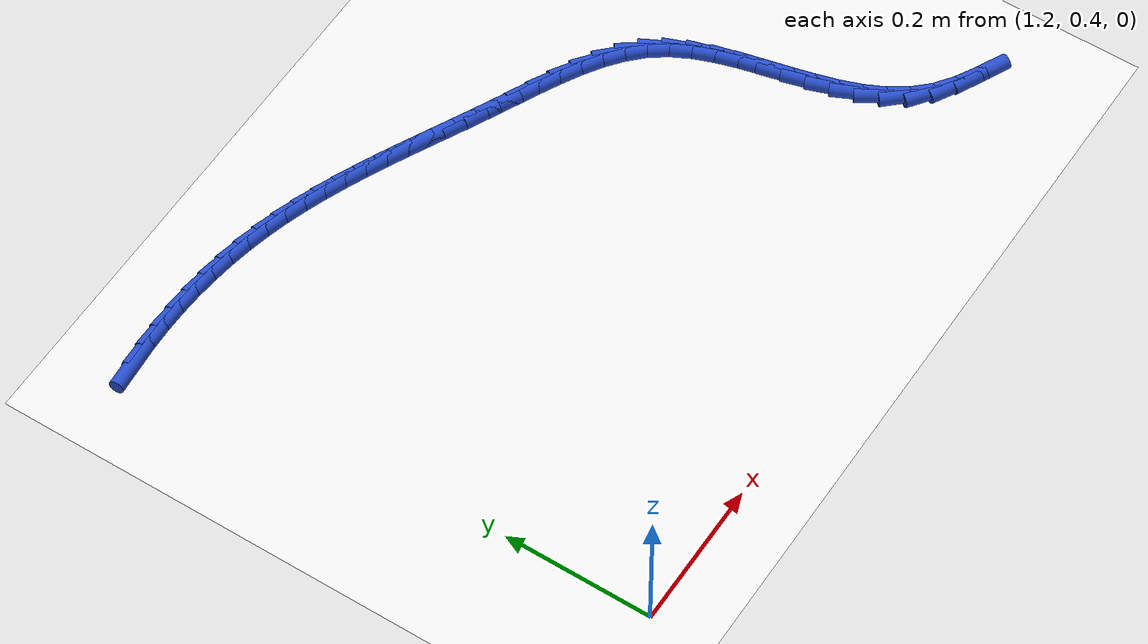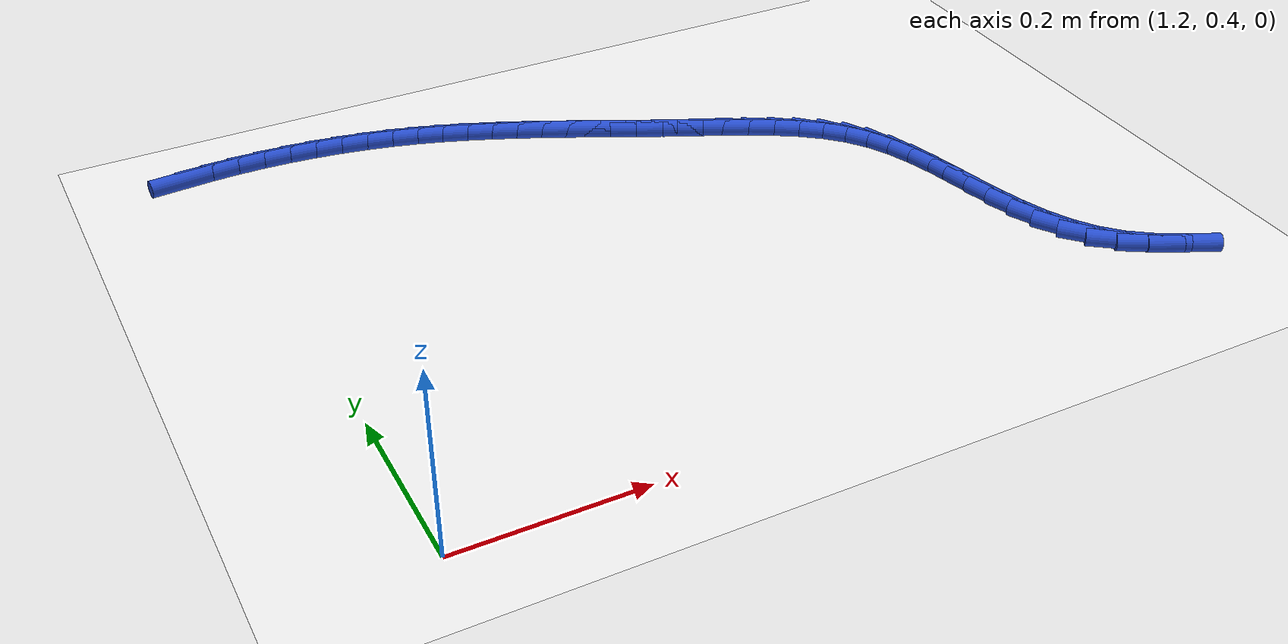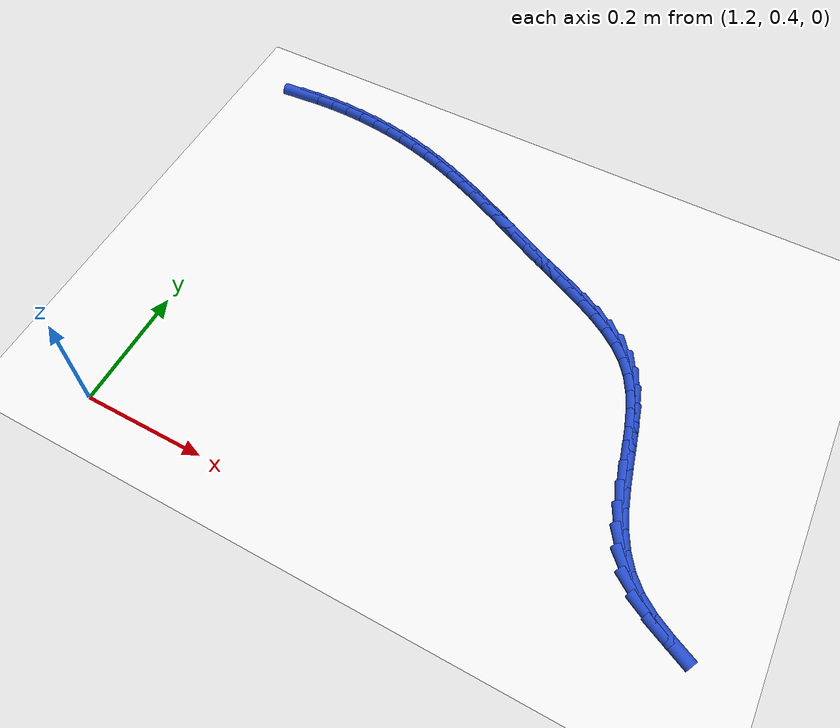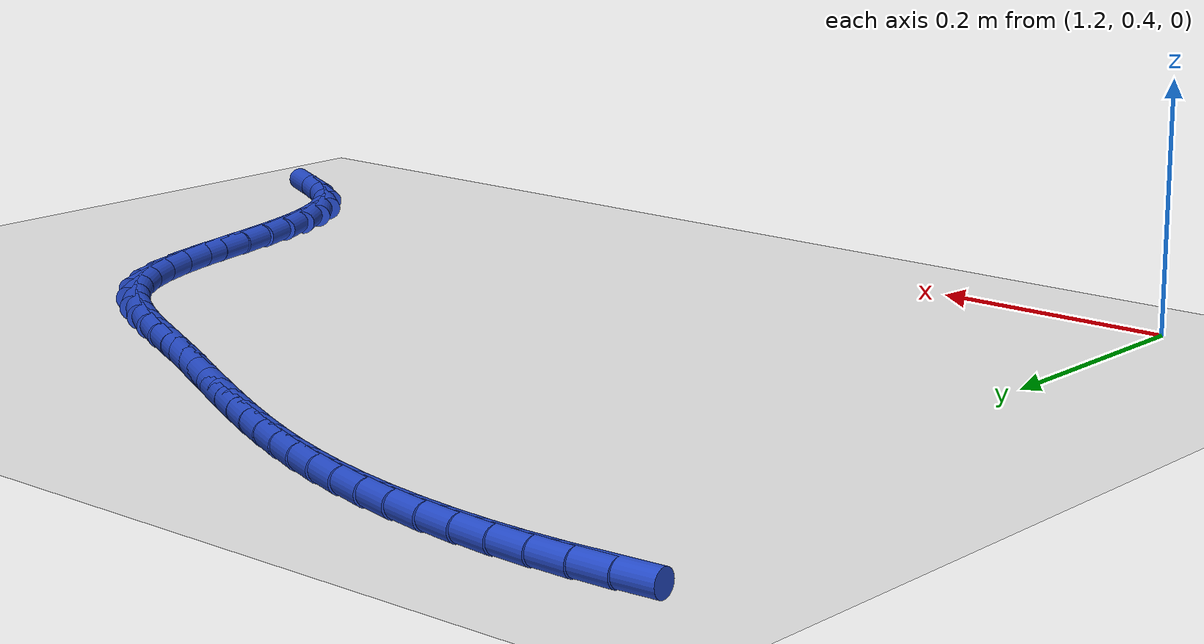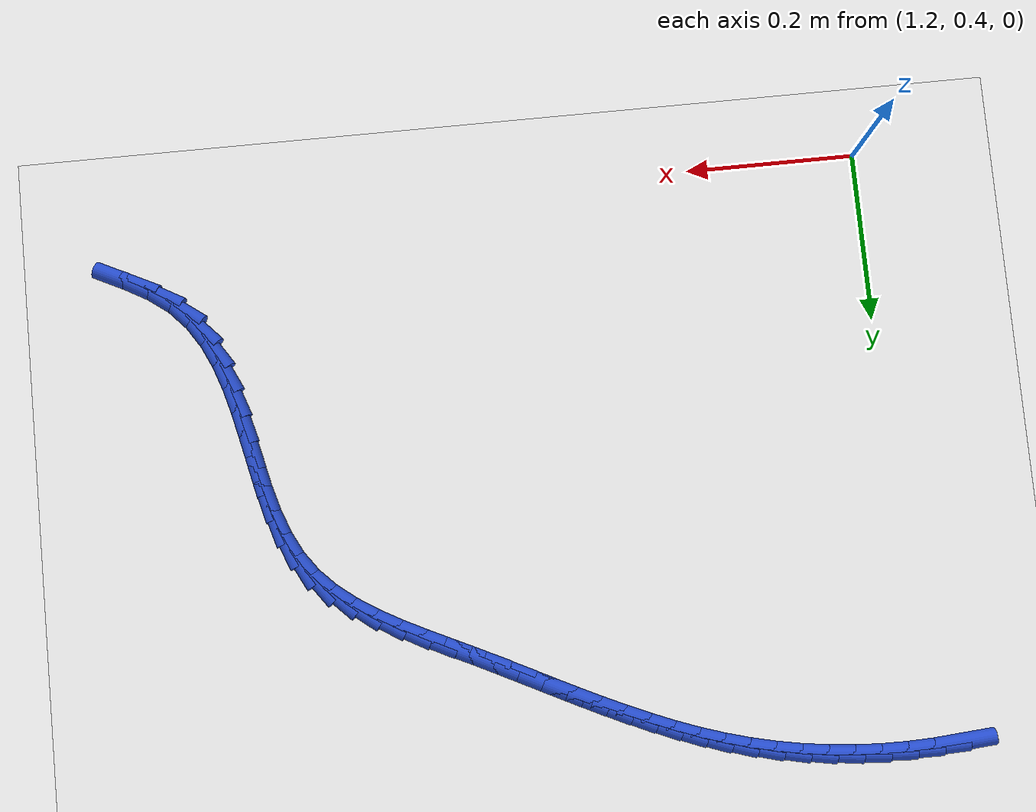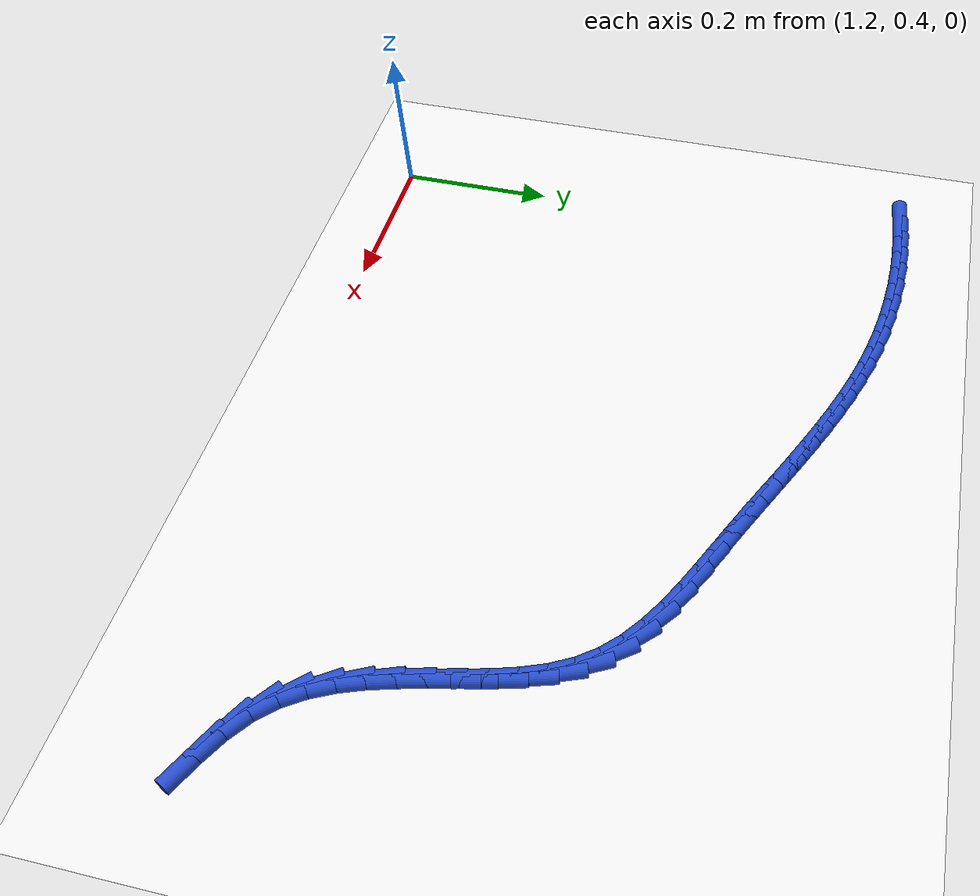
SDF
<sdf version="1.6">
 <world name="default">
  <model name="ground_plane">
   <static>1</static>
   <link name="link">
    <collision name="collision">
     <geometry><plane><normal>0 0 1</normal><size>100 100</size></plane></geometry>
     <surface><friction><ode><mu>100</mu><mu2>50</mu2></ode></friction></surface>
    </collision>
    <visual name="visual">
     <cast_shadows>0</cast_shadows>
     <geometry><plane><normal>0 0 1</normal><size>100 100</size></plane></geometry>
     <material>
      <script><uri>file://media/materials/scripts/gazebo.material</uri><name>Gazebo/WhiteGlow</name></script>
     </material>
    </visual>
   </link>
  </model>
  <model name="line">
   <link name="link_61">
    <pose>1.1579582937760833 1.1000345942703362 0.01 0 1.57 0.07704858479929733</pose>
    <collision name="collision">
     <geometry><cylinder><radius>0.01</radius><length>0.08</length></cylinder></geometry>
    </collision>
    <visual name="visual">
     <material>
      <script><name>Gazebo/Blue</name><uri>file://media/materials/scripts/gazebo.material</uri></script>
     </material>
     <geometry><cylinder><radius>0.01</radius><length>0.08</length></cylinder></geometry>
    </visual>
   </link>
   <link name="link_62">
    <pose>1.1885037407215007 1.1023927459542893 0.01 0 1.57 0.03299538136397213</pose>
    <collision name="collision">
     <geometry><cylinder><radius>0.01</radius><length>0.08</length></cylinder></geometry>
    </collision>
    <visual name="visual">
     <material>
      <script><name>Gazebo/Blue</name><uri>file://media/materials/scripts/gazebo.material</uri></script>
     </material>
     <geometry><cylinder><radius>0.01</radius><length>0.08</length></cylinder></geometry>
    </visual>
   </link>
   <link name="link_63">
    <pose>1.2191616110281127 1.1034046813332463 0.01 0 1.57 -0.01047388133471727</pose>
    <collision name="collision">
     <geometry><cylinder><radius>0.01</radius><length>0.08</length></cylinder></geometry>
    </collision>
    <visual name="visual">
     <material>
      <script><name>Gazebo/Blue</name><uri>file://media/materials/scripts/gazebo.material</uri></script>
     </material>
     <geometry><cylinder><radius>0.01</radius><length>0.08</length></cylinder></geometry>
    </visual>
   </link>
   <link name="link_64">
    <pose>1.249833512203072 1.103083415732097 0.01 0 1.57 -0.0536126245257303</pose>
    <collision name="collision">
     <geometry><cylinder><radius>0.01</radius><length>0.08</length></cylinder></geometry>
    </collision>
    <visual name="visual">
     <material>
      <script><name>Gazebo/Blue</name><uri>file://media/materials/scripts/gazebo.material</uri></script>
     </material>
     <geometry><cylinder><radius>0.01</radius><length>0.08</length></cylinder></geometry>
    </visual>
   </link>
   <link name="link_65">
    <pose>1.2804210517535308 1.1014419644757312 0.01 0 1.57 -0.09667654379611802</pose>
    <collision name="collision">
     <geometry><cylinder><radius>0.01</radius><length>0.08</length></cylinder></geometry>
    </collision>
    <visual name="visual">
     <material>
      <script><name>Gazebo/Blue</name><uri>file://media/materials/scripts/gazebo.material</uri></script>
     </material>
     <geometry><cylinder><radius>0.01</radius><length>0.08</length></cylinder></geometry>
    </visual>
   </link>
   <link name="link_66">
    <pose>1.3108258371866428 1.0984933428890373 0.01 0 1.57 -0.13992501433444052</pose>
    <collision name="collision">
     <geometry><cylinder><radius>0.01</radius><length>0.08</length></cylinder></geometry>
    </collision>
    <visual name="visual">
     <material>
      <script><name>Gazebo/Blue</name><uri>file://media/materials/scripts/gazebo.material</uri></script>
     </material>
     <geometry><cylinder><radius>0.01</radius><length>0.08</length></cylinder></geometry>
    </visual>
   </link>
   <link name="link_67">
    <pose>1.3409494760095602 1.0942505662969064 0.01 0 1.57 -0.18362271742699401</pose>
    <collision name="collision">
     <geometry><cylinder><radius>0.01</radius><length>0.08</length></cylinder></geometry>
    </collision>
    <visual name="visual">
     <material>
      <script><name>Gazebo/Blue</name><uri>file://media/materials/scripts/gazebo.material</uri></script>
     </material>
     <geometry><cylinder><radius>0.01</radius><length>0.08</length></cylinder></geometry>
    </visual>
   </link>
   <link name="link_68">
    <pose>1.3706935757294356 1.0887266500242272 0.01 0 1.57 -0.22804130920534815</pose>
    <collision name="collision">
     <geometry><cylinder><radius>0.01</radius><length>0.08</length></cylinder></geometry>
    </collision>
    <visual name="visual">
     <material>
      <script><name>Gazebo/Blue</name><uri>file://media/materials/scripts/gazebo.material</uri></script>
     </material>
     <geometry><cylinder><radius>0.01</radius><length>0.08</length></cylinder></geometry>
    </visual>
   </link>
   <link name="link_69">
    <pose>1.399959743853422 1.0819346093958897 0.01 0 1.57 -0.27314064011513567</pose>
    <collision name="collision">
     <geometry><cylinder><radius>0.01</radius><length>0.08</length></cylinder></geometry>
    </collision>
    <visual name="visual">
     <material>
      <script><name>Gazebo/Blue</name><uri>file://media/materials/scripts/gazebo.material</uri></script>
     </material>
     <geometry><cylinder><radius>0.01</radius><length>0.08</length></cylinder></geometry>
    </visual>
   </link>
   <link name="link_70">
    <pose>1.4286609782781352 1.0738941799688617 0.01 0 1.57 -0.31568889287929874</pose>
    <collision name="collision">
     <geometry><cylinder><radius>0.01</radius><length>0.08</length></cylinder></geometry>
    </collision>
    <visual name="visual">
     <material>
      <script><name>Gazebo/Blue</name><uri>file://media/materials/scripts/gazebo.material</uri></script>
     </material>
     <geometry><cylinder><radius>0.01</radius><length>0.08</length></cylinder></geometry>
    </visual>
   </link>
   <link name="link_71">
    <pose>1.456827944930706 1.064694520428787 0.01 0 1.57 -0.3533522785203286</pose>
    <collision name="collision">
     <geometry><cylinder><radius>0.01</radius><length>0.08</length></cylinder></geometry>
    </collision>
    <visual name="visual">
     <material>
      <script><name>Gazebo/Blue</name><uri>file://media/materials/scripts/gazebo.material</uri></script>
     </material>
     <geometry><cylinder><radius>0.01</radius><length>0.08</length></cylinder></geometry>
    </visual>
   </link>
   <link name="link_72">
    <pose>1.484560763086737 1.0544657663411499 0.01 0 1.57 -0.38575921719246875</pose>
    <collision name="collision">
     <geometry><cylinder><radius>0.01</radius><length>0.08</length></cylinder></geometry>
    </collision>
    <visual name="visual">
     <material>
      <script><name>Gazebo/Blue</name><uri>file://media/materials/scripts/gazebo.material</uri></script>
     </material>
     <geometry><cylinder><radius>0.01</radius><length>0.08</length></cylinder></geometry>
    </visual>
   </link>
   <link name="link_73">
    <pose>1.5119604510733182 1.0433385837041018 0.01 0 1.57 -0.4126924981171364</pose>
    <collision name="collision">
     <geometry><cylinder><radius>0.01</radius><length>0.08</length></cylinder></geometry>
    </collision>
    <visual name="visual">
     <material>
      <script><name>Gazebo/Blue</name><uri>file://media/materials/scripts/gazebo.material</uri></script>
     </material>
     <geometry><cylinder><radius>0.01</radius><length>0.08</length></cylinder></geometry>
    </visual>
   </link>
   <link name="link_74">
    <pose>1.5391280272175378 1.0314436385157928 0.01 0 1.57 -0.43404288449702344</pose>
    <collision name="collision">
     <geometry><cylinder><radius>0.01</radius><length>0.08</length></cylinder></geometry>
    </collision>
    <visual name="visual">
     <material>
      <script><name>Gazebo/Blue</name><uri>file://media/materials/scripts/gazebo.material</uri></script>
     </material>
     <geometry><cylinder><radius>0.01</radius><length>0.08</length></cylinder></geometry>
    </visual>
   </link>
   <link name="link_75">
    <pose>1.5661645098464838 1.0189115967743727 0.01 0 1.57 -0.4497865280194924</pose>
    <collision name="collision">
     <geometry><cylinder><radius>0.01</radius><length>0.08</length></cylinder></geometry>
    </collision>
    <visual name="visual">
     <material>
      <script><name>Gazebo/Blue</name><uri>file://media/materials/scripts/gazebo.material</uri></script>
     </material>
     <geometry><cylinder><radius>0.01</radius><length>0.08</length></cylinder></geometry>
    </visual>
   </link>
   <link name="link_76">
    <pose>1.5931709172872452 1.0058731244779926 0.01 0 1.57 -0.4599643226397401</pose>
    <collision name="collision">
     <geometry><cylinder><radius>0.01</radius><length>0.08</length></cylinder></geometry>
    </collision>
    <visual name="visual">
     <material>
      <script><name>Gazebo/Blue</name><uri>file://media/materials/scripts/gazebo.material</uri></script>
     </material>
     <geometry><cylinder><radius>0.01</radius><length>0.08</length></cylinder></geometry>
    </visual>
   </link>
   <link name="link_77">
    <pose>1.6202482678669108 0.9924588876248024 0.01 0 1.57 -0.46466522681983186</pose>
    <collision name="collision">
     <geometry><cylinder><radius>0.01</radius><length>0.08</length></cylinder></geometry>
    </collision>
    <visual name="visual">
     <material>
      <script><name>Gazebo/Blue</name><uri>file://media/materials/scripts/gazebo.material</uri></script>
     </material>
     <geometry><cylinder><radius>0.01</radius><length>0.08</length></cylinder></geometry>
    </visual>
   </link>
   <link name="link_78">
    <pose>1.6474975799125702 0.9787995522129526 0.01 0 1.57 -0.4640144312835244</pose>
    <collision name="collision">
     <geometry><cylinder><radius>0.01</radius><length>0.08</length></cylinder></geometry>
    </collision>
    <visual name="visual">
     <material>
      <script><name>Gazebo/Blue</name><uri>file://media/materials/scripts/gazebo.material</uri></script>
     </material>
     <geometry><cylinder><radius>0.01</radius><length>0.08</length></cylinder></geometry>
    </visual>
   </link>
   <link name="link_79">
    <pose>1.6750198717513107 0.9650257842405936 0.01 0 1.57 -0.4581664236031011</pose>
    <collision name="collision">
     <geometry><cylinder><radius>0.01</radius><length>0.08</length></cylinder></geometry>
    </collision>
    <visual name="visual">
     <material>
      <script><name>Gazebo/Blue</name><uri>file://media/materials/scripts/gazebo.material</uri></script>
     </material>
     <geometry><cylinder><radius>0.01</radius><length>0.08</length></cylinder></geometry>
    </visual>
   </link>
   <link name="link_80">
    <pose>1.7029161617102224 0.9512682497058761 0.01 0 1.57 -0.44770290797502227</pose>
    <collision name="collision">
     <geometry><cylinder><radius>0.01</radius><length>0.08</length></cylinder></geometry>
    </collision>
    <visual name="visual">
     <material>
      <script><name>Gazebo/Blue</name><uri>file://media/materials/scripts/gazebo.material</uri></script>
     </material>
     <geometry><cylinder><radius>0.01</radius><length>0.08</length></cylinder></geometry>
    </visual>
   </link>
   <link name="link_81">
    <pose>1.7312765500154421 0.9376488793872523 0.01 0 1.57 -0.4446795281255205</pose>
    <collision name="collision">
     <geometry><cylinder><radius>0.01</radius><length>0.08</length></cylinder></geometry>
    </collision>
    <visual name="visual">
     <material>
      <script><name>Gazebo/Blue</name><uri>file://media/materials/scripts/gazebo.material</uri></script>
     </material>
     <geometry><cylinder><radius>0.01</radius><length>0.08</length></cylinder></geometry>
    </visual>
   </link>
   <link name="link_82">
    <pose>1.759863063982412 0.9240271235306459 0.01 0 1.57 -0.4627449402328259</pose>
    <collision name="collision">
     <geometry><cylinder><radius>0.01</radius><length>0.08</length></cylinder></geometry>
    </collision>
    <visual name="visual">
     <material>
      <script><name>Gazebo/Blue</name><uri>file://media/materials/scripts/gazebo.material</uri></script>
     </material>
     <geometry><cylinder><radius>0.01</radius><length>0.08</length></cylinder></geometry>
    </visual>
   </link>
   <link name="link_83">
    <pose>1.7880601807000176 0.9099603666481408 0.01 0 1.57 -0.5036015043634787</pose>
    <collision name="collision">
     <geometry><cylinder><radius>0.01</radius><length>0.08</length></cylinder></geometry>
    </collision>
    <visual name="visual">
     <material>
      <script><name>Gazebo/Blue</name><uri>file://media/materials/scripts/gazebo.material</uri></script>
     </material>
     <geometry><cylinder><radius>0.01</radius><length>0.08</length></cylinder></geometry>
    </visual>
   </link>
   <link name="link_84">
    <pose>1.8152315024463632 0.8949892919903871 0.01 0 1.57 -0.5695597362605116</pose>
    <collision name="collision">
     <geometry><cylinder><radius>0.01</radius><length>0.08</length></cylinder></geometry>
    </collision>
    <visual name="visual">
     <material>
      <script><name>Gazebo/Blue</name><uri>file://media/materials/scripts/gazebo.material</uri></script>
     </material>
     <geometry><cylinder><radius>0.01</radius><length>0.08</length></cylinder></geometry>
    </visual>
   </link>
   <link name="link_85">
    <pose>1.8407406314995531 0.8786545828080345 0.01 0 1.57 -0.6638561910172186</pose>
    <collision name="collision">
     <geometry><cylinder><radius>0.01</radius><length>0.08</length></cylinder></geometry>
    </collision>
    <visual name="visual">
     <material>
      <script><name>Gazebo/Blue</name><uri>file://media/materials/scripts/gazebo.material</uri></script>
     </material>
     <geometry><cylinder><radius>0.01</radius><length>0.08</length></cylinder></geometry>
    </visual>
   </link>
   <link name="link_86">
    <pose>1.8639511701376892 0.8604969223517341 0.01 0 1.57 -0.7894353769941953</pose>
    <collision name="collision">
     <geometry><cylinder><radius>0.01</radius><length>0.08</length></cylinder></geometry>
    </collision>
    <visual name="visual">
     <material>
      <script><name>Gazebo/Blue</name><uri>file://media/materials/scripts/gazebo.material</uri></script>
     </material>
     <geometry><cylinder><radius>0.01</radius><length>0.08</length></cylinder></geometry>
    </visual>
   </link>
   <link name="link_87">
    <pose>1.884226720638877 0.8400569938721354 0.01 0 1.57 -0.9451712489348648</pose>
    <collision name="collision">
     <geometry><cylinder><radius>0.01</radius><length>0.08</length></cylinder></geometry>
    </collision>
    <visual name="visual">
     <material>
      <script><name>Gazebo/Blue</name><uri>file://media/materials/scripts/gazebo.material</uri></script>
     </material>
     <geometry><cylinder><radius>0.01</radius><length>0.08</length></cylinder></geometry>
    </visual>
   </link>
   <link name="link_88">
    <pose>1.9009590977672381 0.8168959211326857 0.01 0 1.57 -1.0969636395534144</pose>
    <collision name="collision">
     <geometry><cylinder><radius>0.01</radius><length>0.08</length></cylinder></geometry>
    </collision>
    <visual name="visual">
     <material>
      <script><name>Gazebo/Blue</name><uri>file://media/materials/scripts/gazebo.material</uri></script>
     </material>
     <geometry><cylinder><radius>0.01</radius><length>0.08</length></cylinder></geometry>
    </visual>
   </link>
   <link name="link_89">
    <pose>1.914208243796928 0.7910588996978546 0.01 0 1.57 -1.2115896282197225</pose>
    <collision name="collision">
     <geometry><cylinder><radius>0.01</radius><length>0.08</length></cylinder></geometry>
    </collision>
    <visual name="visual">
     <material>
      <script><name>Gazebo/Blue</name><uri>file://media/materials/scripts/gazebo.material</uri></script>
     </material>
     <geometry><cylinder><radius>0.01</radius><length>0.08</length></cylinder></geometry>
    </visual>
   </link>
   <link name="link_90">
    <pose>1.9247130956857017 0.7630830704186637 0.01 0 1.57 -1.2898255030879229</pose>
    <collision name="collision">
     <geometry><cylinder><radius>0.01</radius><length>0.08</length></cylinder></geometry>
    </collision>
    <visual name="visual">
     <material>
      <script><name>Gazebo/Blue</name><uri>file://media/materials/scripts/gazebo.material</uri></script>
     </material>
     <geometry><cylinder><radius>0.01</radius><length>0.08</length></cylinder></geometry>
    </visual>
   </link>
   <link name="link_91">
    <pose>1.9332429764894095 0.7335275894845392 0.01 0 1.57 -1.3356843778826533</pose>
    <collision name="collision">
     <geometry><cylinder><radius>0.01</radius><length>0.08</length></cylinder></geometry>
    </collision>
    <visual name="visual">
     <material>
      <script><name>Gazebo/Blue</name><uri>file://media/materials/scripts/gazebo.material</uri></script>
     </material>
     <geometry><cylinder><radius>0.01</radius><length>0.08</length></cylinder></geometry>
    </visual>
   </link>
   <link name="link_92">
    <pose>1.940567209263902 0.7029516130849063 0.01 0 1.57 -1.3524121227152148</pose>
    <collision name="collision">
     <geometry><cylinder><radius>0.01</radius><length>0.08</length></cylinder></geometry>
    </collision>
    <visual name="visual">
     <material>
      <script><name>Gazebo/Blue</name><uri>file://media/materials/scripts/gazebo.material</uri></script>
     </material>
     <geometry><cylinder><radius>0.01</radius><length>0.08</length></cylinder></geometry>
    </visual>
   </link>
   <link name="link_93">
    <pose>1.9474551170650278 0.6719142974091905 0.01 0 1.57 -1.3415126069127032</pose>
    <collision name="collision">
     <geometry><cylinder><radius>0.01</radius><length>0.08</length></cylinder></geometry>
    </collision>
    <visual name="visual">
     <material>
      <script><name>Gazebo/Blue</name><uri>file://media/materials/scripts/gazebo.material</uri></script>
     </material>
     <geometry><cylinder><radius>0.01</radius><length>0.08</length></cylinder></geometry>
    </visual>
   </link>
   <link name="link_94">
    <pose>1.9546760229486375 0.6409747986468181 0.01 0 1.57 -1.3025672770986267</pose>
    <collision name="collision">
     <geometry><cylinder><radius>0.01</radius><length>0.08</length></cylinder></geometry>
    </collision>
    <visual name="visual">
     <material>
      <script><name>Gazebo/Blue</name><uri>file://media/materials/scripts/gazebo.material</uri></script>
     </material>
     <geometry><cylinder><radius>0.01</radius><length>0.08</length></cylinder></geometry>
    </visual>
   </link>
   <link name="link_95">
    <pose>1.9629992499705813 0.6106922729872148 0.01 0 1.57 -1.2334586378308012</pose>
    <collision name="collision">
     <geometry><cylinder><radius>0.01</radius><length>0.08</length></cylinder></geometry>
    </collision>
    <visual name="visual">
     <material>
      <script><name>Gazebo/Blue</name><uri>file://media/materials/scripts/gazebo.material</uri></script>
     </material>
     <geometry><cylinder><radius>0.01</radius><length>0.08</length></cylinder></geometry>
    </visual>
   </link>
   <link name="link_96">
    <pose>1.9731941211867094 0.5816258766198061 0.01 0 1.57 -1.1311648728974628</pose>
    <collision name="collision">
     <geometry><cylinder><radius>0.01</radius><length>0.08</length></cylinder></geometry>
    </collision>
    <visual name="visual">
     <material>
      <script><name>Gazebo/Blue</name><uri>file://media/materials/scripts/gazebo.material</uri></script>
     </material>
     <geometry><cylinder><radius>0.01</radius><length>0.08</length></cylinder></geometry>
    </visual>
   </link>
   <link name="link_97">
    <pose>1.9860299596528712 0.5543347657340181 0.01 0 1.57 -0.9937370952770391</pose>
    <collision name="collision">
     <geometry><cylinder><radius>0.01</radius><length>0.08</length></cylinder></geometry>
    </collision>
    <visual name="visual">
     <material>
      <script><name>Gazebo/Blue</name><uri>file://media/materials/scripts/gazebo.material</uri></script>
     </material>
     <geometry><cylinder><radius>0.01</radius><length>0.08</length></cylinder></geometry>
    </visual>
   </link>
   <link name="link_98">
    <pose>2.002276088424916 0.5293780965192763 0.01 0 1.57 -0.8239146418849103</pose>
    <collision name="collision">
     <geometry><cylinder><radius>0.01</radius><length>0.08</length></cylinder></geometry>
    </collision>
    <visual name="visual">
     <material>
      <script><name>Gazebo/Blue</name><uri>file://media/materials/scripts/gazebo.material</uri></script>
     </material>
     <geometry><cylinder><radius>0.01</radius><length>0.08</length></cylinder></geometry>
    </visual>
   </link>
   <link name="link_99">
    <pose>2.022701830558695 0.5073150251650065 0.01 0 1.57 -0.6387135689228463</pose>
    <collision name="collision">
     <geometry><cylinder><radius>0.01</radius><length>0.08</length></cylinder></geometry>
    </collision>
    <visual name="visual">
     <material>
      <script><name>Gazebo/Blue</name><uri>file://media/materials/scripts/gazebo.material</uri></script>
     </material>
     <geometry><cylinder><radius>0.01</radius><length>0.08</length></cylinder></geometry>
    </visual>
   </link>
   <link name="link_100">
    <pose>2.0478981522428574 0.4886055928463163 0.01 0 1.57 -0.5081158835378974</pose>
    <collision name="collision">
     <geometry><cylinder><radius>0.01</radius><length>0.08</length></cylinder></geometry>
    </collision>
    <visual name="visual">
     <material>
      <script><name>Gazebo/Blue</name><uri>file://media/materials/scripts/gazebo.material</uri></script>
     </material>
     <geometry><cylinder><radius>0.01</radius><length>0.08</length></cylinder></geometry>
    </visual>
   </link>
   <link name="link_101">
    <pose>2.0765491805550527 0.47265018775856055 0.01 0 1.57 -0.4534981536761874</pose>
    <collision name="collision">
     <geometry><cylinder><radius>0.01</radius><length>0.08</length></cylinder></geometry>
    </collision>
    <visual name="visual">
     <material>
      <script><name>Gazebo/Blue</name><uri>file://media/materials/scripts/gazebo.material</uri></script>
     </material>
     <geometry><cylinder><radius>0.01</radius><length>0.08</length></cylinder></geometry>
    </visual>
   </link>
  </model>
 </world>
</sdf>
